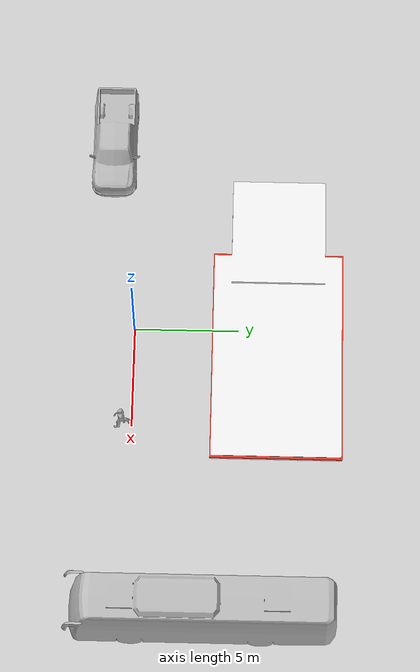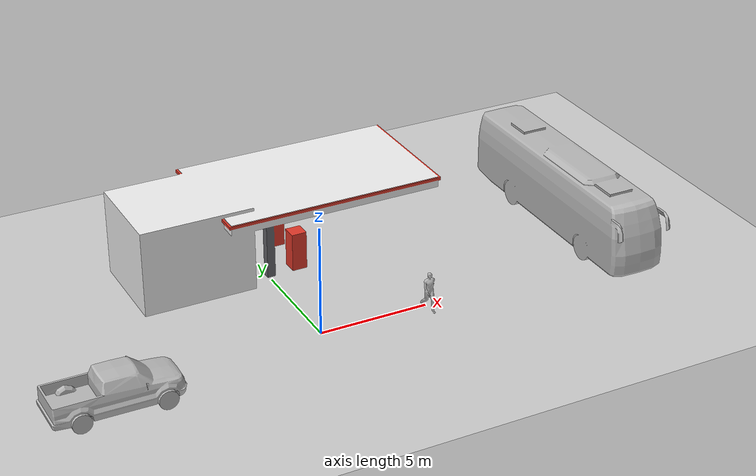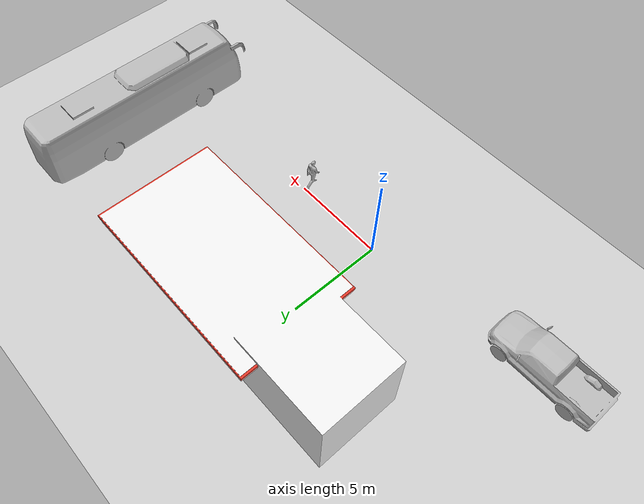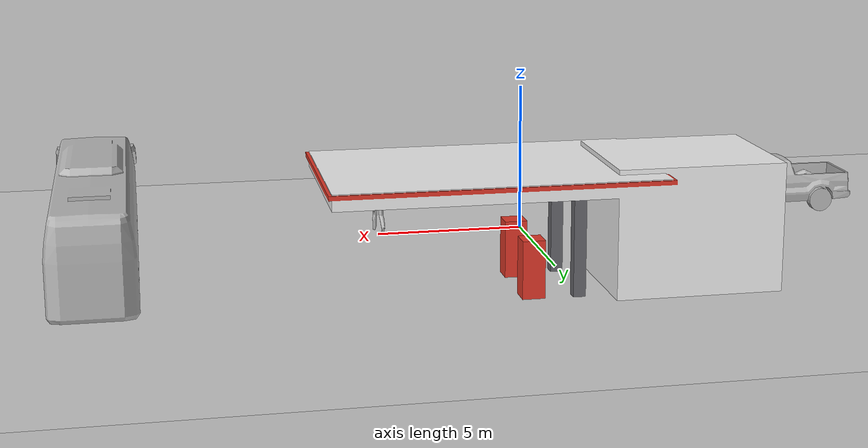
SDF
<sdf version="1.7">
 <world name="default">
  <light name="sun" type="directional">
   <pose>0 0 10 0 -0 0</pose>
   <diffuse>0.8 0.8 0.8 1</diffuse>
   <specular>0.2 0.2 0.2 1</specular>
   <attenuation>
    <range>1000</range>
    <constant>0.9</constant>
    <linear>0.01</linear>
    <quadratic>0.001</quadratic>
   </attenuation>
   <direction>-0.5 0.1 -0.9</direction>
   <spot><inner_angle>0</inner_angle><outer_angle>0</outer_angle><falloff>0</falloff></spot>
  </light>
  <model name="ground_plane">
   <static>1</static>
   <link name="link">
    <collision name="collision">
     <geometry><plane><normal>0 0 1</normal><size>100 100</size></plane></geometry>
     <surface><friction><ode><mu>100</mu><mu2>50</mu2></ode></friction></surface>
    </collision>
    <visual name="visual">
     <cast_shadows>0</cast_shadows>
     <geometry><plane><normal>0 0 1</normal><size>100 100</size></plane></geometry>
     <material>
      <script><uri>file://media/materials/scripts/gazebo.material</uri><name>Gazebo/Grey</name></script>
     </material>
    </visual>
   </link>
  </model>
  <gravity>0 0 -9.8</gravity>
  <magnetic_field>6e-06 2.3e-05 -4.2e-05</magnetic_field>
  <atmosphere type="adiabatic"/>
  <physics type="ode">
   <max_step_size>0.001</max_step_size>
   <real_time_factor>1</real_time_factor>
   <real_time_update_rate>1000</real_time_update_rate>
  </physics>
  <scene><ambient>0.4 0.4 0.4 1</ambient><background>0.7 0.7 0.7 1</background><shadows>1</shadows></scene>
  <spherical_coordinates>
   <surface_model>EARTH_WGS84</surface_model>
   <latitude_deg>0</latitude_deg>
   <longitude_deg>0</longitude_deg>
   <elevation>0</elevation>
   <heading_deg>0</heading_deg>
  </spherical_coordinates>
  <model name="Gas Station">
   <static>1</static>
   <link name="link">
    <collision name="collision">
     <geometry><mesh><uri>model://gas_station/meshes/gas_station.dae</uri></mesh></geometry>
    </collision>
    <visual name="visual">
     <geometry><mesh><uri>model://gas_station/meshes/gas_station.dae</uri></mesh></geometry>
     <material>
      <script>
       <uri>model://gas_station/materials/scripts</uri>
       <uri>model://gas_station/materials/textures</uri>
       <name>GasStation/Diffuse</name>
      </script>
      <shader type="normal_map_tangent_space"><normal_map>GasStation_Normal.png</normal_map></shader>
     </material>
    </visual>
   </link>
   <pose>0.314456 6.82508 0 0 -0 0</pose>
  </model>
  <model name="person_walking">
   <link name="link">
    <inertial>
     <pose>0 0 0.95 0 -0 0</pose>
     <mass>80</mass>
     <inertia><ixx>27.82</ixx><ixy>0</ixy><ixz>0</ixz><iyy>24.88</iyy><iyz>0</iyz><izz>4.57</izz></inertia>
    </inertial>
    <collision name="bottom">
     <pose>0 0 0.01 0 -0 0</pose>
     <geometry><box><size>0.35 0.75 0.02</size></box></geometry>
    </collision>
    <collision name="person">
     <pose>0 0 -0.02 0 -0 0</pose>
     <geometry><mesh><uri>model://person_walking/meshes/walking.dae</uri></mesh></geometry>
    </collision>
    <visual name="visual">
     <pose>0 0 -0.02 0 -0 0</pose>
     <geometry><mesh><uri>model://person_walking/meshes/walking.dae</uri></mesh></geometry>
    </visual>
   </link>
   <pose>4.91968 -0.435644 0 -1e-06 0 0.000588</pose>
  </model>
  <model name="pickup">
   <static>1</static>
   <link name="link">
    <collision name="collision">
     <pose>0 0 0 0 0 -1.5708</pose>
     <geometry><mesh><uri>model://pickup/meshes/pickup.dae</uri></mesh></geometry>
    </collision>
    <visual name="visual">
     <pose>0 0 0 0 0 -1.5708</pose>
     <geometry><mesh><uri>model://pickup/meshes/pickup.dae</uri></mesh></geometry>
    </visual>
   </link>
   <pose>-9.48308 -1.23351 0 0 -0 0</pose>
  </model>
  <model name="bus">
   <static>1</static>
   <link name="link">
    <collision name="collision">
     <geometry><mesh><scale>0.01 0.01 0.01</scale><uri>model://bus/meshes/bus.obj</uri></mesh></geometry>
    </collision>
    <visual name="visual">
     <geometry><mesh><scale>0.01 0.01 0.01</scale><uri>model://bus/meshes/bus.obj</uri></mesh></geometry>
    </visual>
   </link>
   <pose>14.3968 3.52692 0 0 -0 0</pose>
  </model>
 </world>
</sdf>
